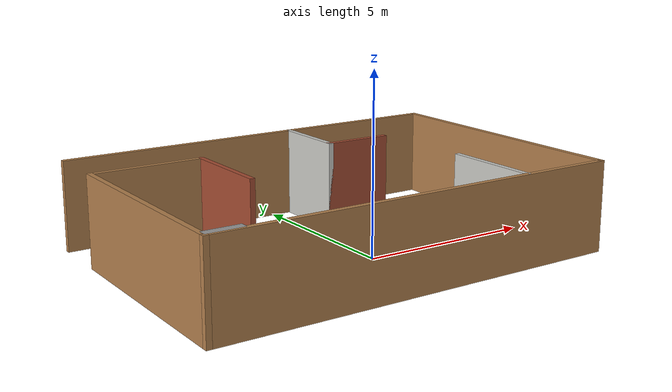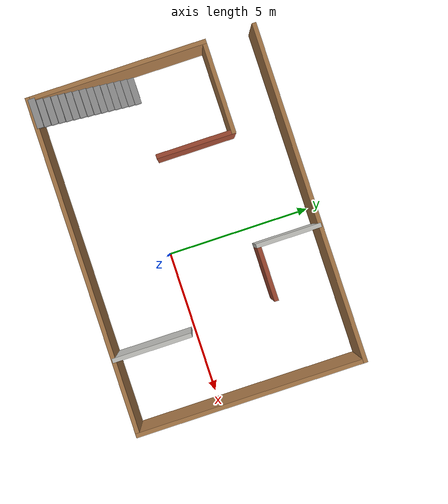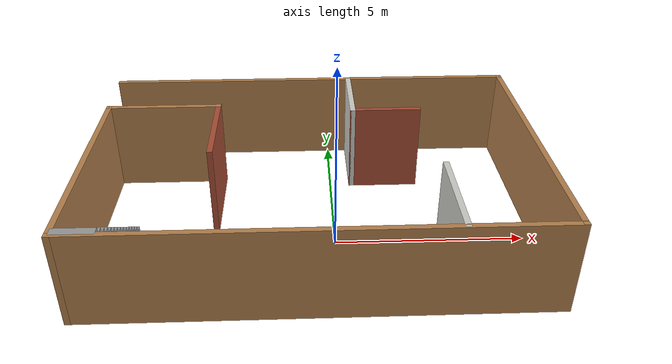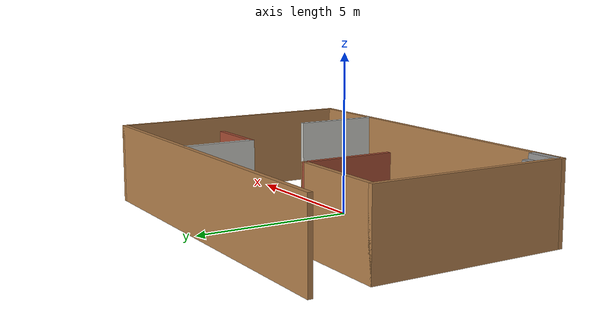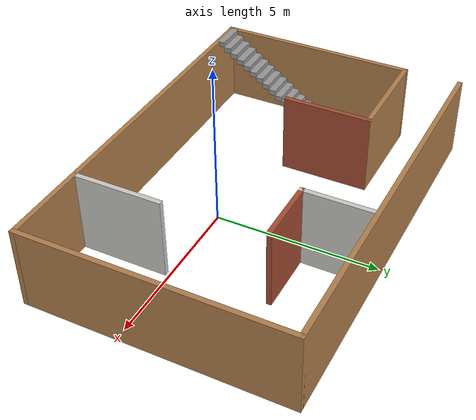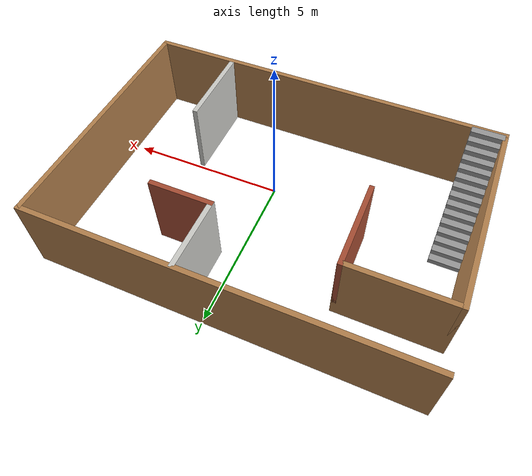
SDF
<?xml version='1.0'?>
<sdf version='1.6'>
  <model name='layout'>
    <pose frame=''>-0.499965 1.11634 0 0 -0 0</pose>
    <link name='Stairs_2'>
      <visual name='Stairs_2_Visual_0'>
        <pose frame=''>-5.29039 -0.537117 0.083333 0 -0 0</pose>
        <geometry>
          <box>
            <size>1 0.233333 0.166667</size>
          </box>
        </geometry>
        <material>
          <script>
            <uri>file://media/materials/scripts/gazebo.material</uri>
            <name>Gazebo/Grey</name>
          </script>
          <ambient>1 1 1 1</ambient>
        </material>
        <meta>
          <layer>0</layer>
        </meta>
      </visual>
      <collision name='Stairs_2_Collision_0'>
        <geometry>
          <box>
            <size>1 0.233333 0.166667</size>
          </box>
        </geometry>
        <pose frame=''>-5.29039 -0.537117 0.083333 0 -0 0</pose>
      </collision>
      <visual name='Stairs_2_Visual_1'>
        <pose frame=''>-5.29039 -0.770451 0.25 0 -0 0</pose>
        <geometry>
          <box>
            <size>1 0.233333 0.166667</size>
          </box>
        </geometry>
        <material>
          <script>
            <uri>file://media/materials/scripts/gazebo.material</uri>
            <name>Gazebo/Grey</name>
          </script>
          <ambient>1 1 1 1</ambient>
        </material>
        <meta>
          <layer>0</layer>
        </meta>
      </visual>
      <collision name='Stairs_2_Collision_1'>
        <geometry>
          <box>
            <size>1 0.233333 0.166667</size>
          </box>
        </geometry>
        <pose frame=''>-5.29039 -0.770451 0.25 0 -0 0</pose>
      </collision>
      <visual name='Stairs_2_Visual_2'>
        <pose frame=''>-5.29039 -1.00378 0.416667 0 -0 0</pose>
        <geometry>
          <box>
            <size>1 0.233333 0.166667</size>
          </box>
        </geometry>
        <material>
          <script>
            <uri>file://media/materials/scripts/gazebo.material</uri>
            <name>Gazebo/Grey</name>
          </script>
          <ambient>1 1 1 1</ambient>
        </material>
        <meta>
          <layer>0</layer>
        </meta>
      </visual>
      <collision name='Stairs_2_Collision_2'>
        <geometry>
          <box>
            <size>1 0.233333 0.166667</size>
          </box>
        </geometry>
        <pose frame=''>-5.29039 -1.00378 0.416667 0 -0 0</pose>
      </collision>
      <visual name='Stairs_2_Visual_3'>
        <pose frame=''>-5.29039 -1.23712 0.583333 0 -0 0</pose>
        <geometry>
          <box>
            <size>1 0.233333 0.166667</size>
          </box>
        </geometry>
        <material>
          <script>
            <uri>file://media/materials/scripts/gazebo.material</uri>
            <name>Gazebo/Grey</name>
          </script>
          <ambient>1 1 1 1</ambient>
        </material>
        <meta>
          <layer>0</layer>
        </meta>
      </visual>
      <collision name='Stairs_2_Collision_3'>
        <geometry>
          <box>
            <size>1 0.233333 0.166667</size>
          </box>
        </geometry>
        <pose frame=''>-5.29039 -1.23712 0.583333 0 -0 0</pose>
      </collision>
      <visual name='Stairs_2_Visual_4'>
        <pose frame=''>-5.29039 -1.47045 0.75 0 -0 0</pose>
        <geometry>
          <box>
            <size>1 0.233333 0.166667</size>
          </box>
        </geometry>
        <material>
          <script>
            <uri>file://media/materials/scripts/gazebo.material</uri>
            <name>Gazebo/Grey</name>
          </script>
          <ambient>1 1 1 1</ambient>
        </material>
        <meta>
          <layer>0</layer>
        </meta>
      </visual>
      <collision name='Stairs_2_Collision_4'>
        <geometry>
          <box>
            <size>1 0.233333 0.166667</size>
          </box>
        </geometry>
        <pose frame=''>-5.29039 -1.47045 0.75 0 -0 0</pose>
      </collision>
      <visual name='Stairs_2_Visual_5'>
        <pose frame=''>-5.29039 -1.70378 0.916667 0 -0 0</pose>
        <geometry>
          <box>
            <size>1 0.233333 0.166667</size>
          </box>
        </geometry>
        <material>
          <script>
            <uri>file://media/materials/scripts/gazebo.material</uri>
            <name>Gazebo/Grey</name>
          </script>
          <ambient>1 1 1 1</ambient>
        </material>
        <meta>
          <layer>0</layer>
        </meta>
      </visual>
      <collision name='Stairs_2_Collision_5'>
        <geometry>
          <box>
            <size>1 0.233333 0.166667</size>
          </box>
        </geometry>
        <pose frame=''>-5.29039 -1.70378 0.916667 0 -0 0</pose>
      </collision>
      <visual name='Stairs_2_Visual_6'>
        <pose frame=''>-5.29039 -1.93712 1.08333 0 -0 0</pose>
        <geometry>
          <box>
            <size>1 0.233333 0.166667</size>
          </box>
        </geometry>
        <material>
          <script>
            <uri>file://media/materials/scripts/gazebo.material</uri>
            <name>Gazebo/Grey</name>
          </script>
          <ambient>1 1 1 1</ambient>
        </material>
        <meta>
          <layer>0</layer>
        </meta>
      </visual>
      <collision name='Stairs_2_Collision_6'>
        <geometry>
          <box>
            <size>1 0.233333 0.166667</size>
          </box>
        </geometry>
        <pose frame=''>-5.29039 -1.93712 1.08333 0 -0 0</pose>
      </collision>
      <visual name='Stairs_2_Visual_7'>
        <pose frame=''>-5.29039 -2.17045 1.25 0 -0 0</pose>
        <geometry>
          <box>
            <size>1 0.233333 0.166667</size>
          </box>
        </geometry>
        <material>
          <script>
            <uri>file://media/materials/scripts/gazebo.material</uri>
            <name>Gazebo/Grey</name>
          </script>
          <ambient>1 1 1 1</ambient>
        </material>
        <meta>
          <layer>0</layer>
        </meta>
      </visual>
      <collision name='Stairs_2_Collision_7'>
        <geometry>
          <box>
            <size>1 0.233333 0.166667</size>
          </box>
        </geometry>
        <pose frame=''>-5.29039 -2.17045 1.25 0 -0 0</pose>
      </collision>
      <visual name='Stairs_2_Visual_8'>
        <pose frame=''>-5.29039 -2.40378 1.41667 0 -0 0</pose>
        <geometry>
          <box>
            <size>1 0.233333 0.166667</size>
          </box>
        </geometry>
        <material>
          <script>
            <uri>file://media/materials/scripts/gazebo.material</uri>
            <name>Gazebo/Grey</name>
          </script>
          <ambient>1 1 1 1</ambient>
        </material>
        <meta>
          <layer>0</layer>
        </meta>
      </visual>
      <collision name='Stairs_2_Collision_8'>
        <geometry>
          <box>
            <size>1 0.233333 0.166667</size>
          </box>
        </geometry>
        <pose frame=''>-5.29039 -2.40378 1.41667 0 -0 0</pose>
      </collision>
      <visual name='Stairs_2_Visual_9'>
        <pose frame=''>-5.29039 -2.63712 1.58333 0 -0 0</pose>
        <geometry>
          <box>
            <size>1 0.233333 0.166667</size>
          </box>
        </geometry>
        <material>
          <script>
            <uri>file://media/materials/scripts/gazebo.material</uri>
            <name>Gazebo/Grey</name>
          </script>
          <ambient>1 1 1 1</ambient>
        </material>
        <meta>
          <layer>0</layer>
        </meta>
      </visual>
      <collision name='Stairs_2_Collision_9'>
        <geometry>
          <box>
            <size>1 0.233333 0.166667</size>
          </box>
        </geometry>
        <pose frame=''>-5.29039 -2.63712 1.58333 0 -0 0</pose>
      </collision>
      <visual name='Stairs_2_Visual_10'>
        <pose frame=''>-5.29039 -2.87045 1.75 0 -0 0</pose>
        <geometry>
          <box>
            <size>1 0.233333 0.166667</size>
          </box>
        </geometry>
        <material>
          <script>
            <uri>file://media/materials/scripts/gazebo.material</uri>
            <name>Gazebo/Grey</name>
          </script>
          <ambient>1 1 1 1</ambient>
        </material>
        <meta>
          <layer>0</layer>
        </meta>
      </visual>
      <collision name='Stairs_2_Collision_10'>
        <geometry>
          <box>
            <size>1 0.233333 0.166667</size>
          </box>
        </geometry>
        <pose frame=''>-5.29039 -2.87045 1.75 0 -0 0</pose>
      </collision>
      <visual name='Stairs_2_Visual_11'>
        <pose frame=''>-5.29039 -3.10378 1.91667 0 -0 0</pose>
        <geometry>
          <box>
            <size>1 0.233333 0.166667</size>
          </box>
        </geometry>
        <material>
          <script>
            <uri>file://media/materials/scripts/gazebo.material</uri>
            <name>Gazebo/Grey</name>
          </script>
          <ambient>1 1 1 1</ambient>
        </material>
        <meta>
          <layer>0</layer>
        </meta>
      </visual>
      <collision name='Stairs_2_Collision_11'>
        <geometry>
          <box>
            <size>1 0.233333 0.166667</size>
          </box>
        </geometry>
        <pose frame=''>-5.29039 -3.10378 1.91667 0 -0 0</pose>
      </collision>
      <visual name='Stairs_2_Visual_12'>
        <pose frame=''>-5.29039 -3.33712 2.08333 0 -0 0</pose>
        <geometry>
          <box>
            <size>1 0.233333 0.166667</size>
          </box>
        </geometry>
        <material>
          <script>
            <uri>file://media/materials/scripts/gazebo.material</uri>
            <name>Gazebo/Grey</name>
          </script>
          <ambient>1 1 1 1</ambient>
        </material>
        <meta>
          <layer>0</layer>
        </meta>
      </visual>
      <collision name='Stairs_2_Collision_12'>
        <geometry>
          <box>
            <size>1 0.233333 0.166667</size>
          </box>
        </geometry>
        <pose frame=''>-5.29039 -3.33712 2.08333 0 -0 0</pose>
      </collision>
      <visual name='Stairs_2_Visual_13'>
        <pose frame=''>-5.29039 -3.57045 2.25 0 -0 0</pose>
        <geometry>
          <box>
            <size>1 0.233333 0.166667</size>
          </box>
        </geometry>
        <material>
          <script>
            <uri>file://media/materials/scripts/gazebo.material</uri>
            <name>Gazebo/Grey</name>
          </script>
          <ambient>1 1 1 1</ambient>
        </material>
        <meta>
          <layer>0</layer>
        </meta>
      </visual>
      <collision name='Stairs_2_Collision_13'>
        <geometry>
          <box>
            <size>1 0.233333 0.166667</size>
          </box>
        </geometry>
        <pose frame=''>-5.29039 -3.57045 2.25 0 -0 0</pose>
      </collision>
      <visual name='Stairs_2_Visual_14'>
        <pose frame=''>-5.29039 -3.80378 2.41667 0 -0 0</pose>
        <geometry>
          <box>
            <size>1 0.233333 0.166667</size>
          </box>
        </geometry>
        <material>
          <script>
            <uri>file://media/materials/scripts/gazebo.material</uri>
            <name>Gazebo/Grey</name>
          </script>
          <ambient>1 1 1 1</ambient>
        </material>
        <meta>
          <layer>0</layer>
        </meta>
      </visual>
      <collision name='Stairs_2_Collision_14'>
        <geometry>
          <box>
            <size>1 0.233333 0.166667</size>
          </box>
        </geometry>
        <pose frame=''>-5.29039 -3.80378 2.41667 0 -0 0</pose>
      </collision>
    </link>
    <link name='Wall_12'>
      <collision name='Wall_12_Collision'>
        <geometry>
          <box>
            <size>2.75 0.15 2.5</size>
          </box>
        </geometry>
        <pose frame=''>0 0 1.25 0 -0 0</pose>
      </collision>
      <visual name='Wall_12_Visual'>
        <pose frame=''>0 0 1.25 0 -0 0</pose>
        <geometry>
          <box>
            <size>2.75 0.15 2.5</size>
          </box>
        </geometry>
        <material>
          <script>
            <uri>file://media/materials/scripts/gazebo.material</uri>
            <name>Gazebo/CeilingTiled</name>
          </script>
          <ambient>0.180392 0.203922 0.211765 1</ambient>
        </material>
        <meta>
          <layer>0</layer>
        </meta>
      </visual>
      <pose frame=''>3.22094 -2.59314 0 0 -0 1.5708</pose>
    </link>
    <link name='Wall_15'>
      <collision name='Wall_15_Collision'>
        <geometry>
          <box>
            <size>2.25 0.15 2.5</size>
          </box>
        </geometry>
        <pose frame=''>0 0 1.25 0 -0 0</pose>
      </collision>
      <visual name='Wall_15_Visual'>
        <pose frame=''>0 0 1.25 0 -0 0</pose>
        <geometry>
          <box>
            <size>2.25 0.15 2.5</size>
          </box>
        </geometry>
        <material>
          <script>
            <uri>file://media/materials/scripts/gazebo.material</uri>
            <name>Gazebo/CeilingTiled</name>
          </script>
          <ambient>0.435294 0.796078 0.67451 1</ambient>
        </material>
        <meta>
          <layer>0</layer>
        </meta>
      </visual>
      <pose frame=''>1.11605 2.82874 0 0 -0 -1.5708</pose>
    </link>
    <link name='Wall_16'>
      <collision name='Wall_16_Collision'>
        <geometry>
          <box>
            <size>2 0.15 2.5</size>
          </box>
        </geometry>
        <pose frame=''>0 0 1.25 0 -0 0</pose>
      </collision>
      <visual name='Wall_16_Visual'>
        <pose frame=''>0 0 1.25 0 -0 0</pose>
        <geometry>
          <box>
            <size>2 0.15 2.5</size>
          </box>
        </geometry>
        <material>
          <script>
            <uri>file://media/materials/scripts/gazebo.material</uri>
            <name>Gazebo/Bricks</name>
          </script>
          <ambient>0.8 0 0 1</ambient>
        </material>
        <meta>
          <layer>0</layer>
        </meta>
      </visual>
      <pose frame=''>2.04105 1.77874 0 0 -0 0</pose>
    </link>
    <link name='Wall_3'>
      <collision name='Wall_3_Collision'>
        <geometry>
          <box>
            <size>11.75 0.15 2.5</size>
          </box>
        </geometry>
        <pose frame=''>0 0 1.25 0 -0 0</pose>
      </collision>
      <visual name='Wall_3_Visual'>
        <pose frame=''>0 0 1.25 0 -0 0</pose>
        <geometry>
          <box>
            <size>11.75 0.15 2.5</size>
          </box>
        </geometry>
        <material>
          <script>
            <uri>file://media/materials/scripts/gazebo.material</uri>
            <name>Gazebo/Wood</name>
          </script>
          <ambient>1 1 1 1</ambient>
        </material>
        <meta>
          <layer>0</layer>
        </meta>
      </visual>
      <pose frame=''>-0 3.925 0 0 -0 0</pose>
    </link>
    <link name='Wall_4'>
      <collision name='Wall_4_Collision'>
        <geometry>
          <box>
            <size>8 0.15 2.5</size>
          </box>
        </geometry>
        <pose frame=''>0 0 1.25 0 -0 0</pose>
      </collision>
      <visual name='Wall_4_Visual'>
        <pose frame=''>0 0 1.25 0 -0 0</pose>
        <geometry>
          <box>
            <size>8 0.15 2.5</size>
          </box>
        </geometry>
        <material>
          <script>
            <uri>file://media/materials/scripts/gazebo.material</uri>
            <name>Gazebo/Wood</name>
          </script>
          <ambient>1 1 1 1</ambient>
        </material>
        <meta>
          <layer>0</layer>
        </meta>
      </visual>
      <pose frame=''>5.8 0 0 0 -0 -1.5708</pose>
    </link>
    <link name='Wall_5'>
      <collision name='Wall_5_Collision'>
        <geometry>
          <box>
            <size>11.75 0.15 2.5</size>
          </box>
        </geometry>
        <pose frame=''>0 0 1.25 0 -0 0</pose>
      </collision>
      <visual name='Wall_5_Visual'>
        <pose frame=''>0 0 1.25 0 -0 0</pose>
        <geometry>
          <box>
            <size>11.75 0.15 2.5</size>
          </box>
        </geometry>
        <material>
          <script>
            <uri>file://media/materials/scripts/gazebo.material</uri>
            <name>Gazebo/Wood</name>
          </script>
          <ambient>1 1 1 1</ambient>
        </material>
        <meta>
          <layer>0</layer>
        </meta>
      </visual>
      <pose frame=''>-0 -3.925 0 0 -0 3.14159</pose>
    </link>
    <link name='Wall_6'>
      <collision name='Wall_6_Collision'>
        <geometry>
          <box>
            <size>6.25 0.15 2.5</size>
          </box>
        </geometry>
        <pose frame=''>0 0 1.25 0 -0 0</pose>
      </collision>
      <visual name='Wall_6_Visual'>
        <pose frame=''>0 0 1.25 0 -0 0</pose>
        <geometry>
          <box>
            <size>6.25 0.15 2.5</size>
          </box>
        </geometry>
        <material>
          <script>
            <uri>file://media/materials/scripts/gazebo.material</uri>
            <name>Gazebo/Wood</name>
          </script>
          <ambient>1 1 1 1</ambient>
        </material>
        <meta>
          <layer>0</layer>
        </meta>
      </visual>
      <pose frame=''>-5.8 -0.875 0 0 -0 1.5708</pose>
    </link>
    <link name='Wall_7'>
      <collision name='Wall_7_Collision'>
        <geometry>
          <box>
            <size>3.25 0.15 2.5</size>
          </box>
        </geometry>
        <pose frame=''>0 0 1.25 0 -0 0</pose>
      </collision>
      <visual name='Wall_7_Visual'>
        <pose frame=''>0 0 1.25 0 -0 0</pose>
        <geometry>
          <box>
            <size>3.25 0.15 2.5</size>
          </box>
        </geometry>
        <material>
          <script>
            <uri>file://media/materials/scripts/gazebo.material</uri>
            <name>Gazebo/Wood</name>
          </script>
          <ambient>1 1 1 1</ambient>
        </material>
        <meta>
          <layer>0</layer>
        </meta>
      </visual>
      <pose frame=''>-4.25 2.175 0 0 -0 0</pose>
    </link>
    <link name='Wall_8'>
      <collision name='Wall_8_Collision'>
        <geometry>
          <box>
            <size>2.75 0.15 2.5</size>
          </box>
        </geometry>
        <pose frame=''>0 0 1.25 0 -0 0</pose>
      </collision>
      <visual name='Wall_8_Visual'>
        <pose frame=''>0 0 1.25 0 -0 0</pose>
        <geometry>
          <box>
            <size>2.75 0.15 2.5</size>
          </box>
        </geometry>
        <material>
          <script>
            <uri>file://media/materials/scripts/gazebo.material</uri>
            <name>Gazebo/Bricks</name>
          </script>
          <ambient>1 1 1 1</ambient>
        </material>
        <meta>
          <layer>0</layer>
        </meta>
      </visual>
      <pose frame=''>-2.7 0.875 0 0 -0 -1.5708</pose>
    </link>
    <static>1</static>
  </model>
</sdf>
